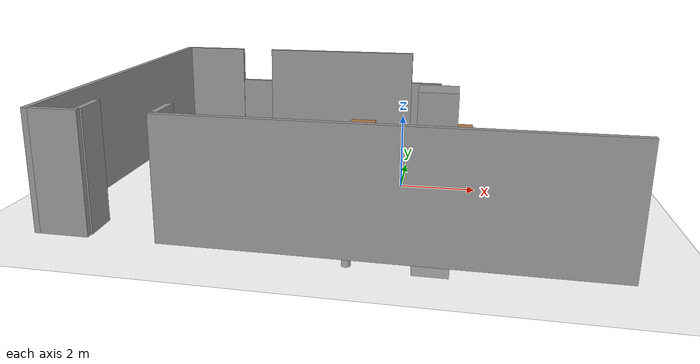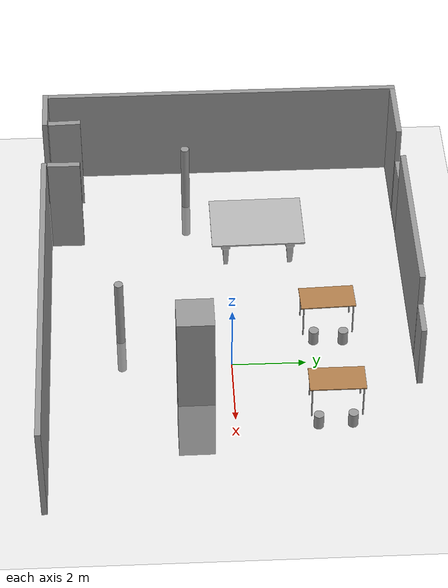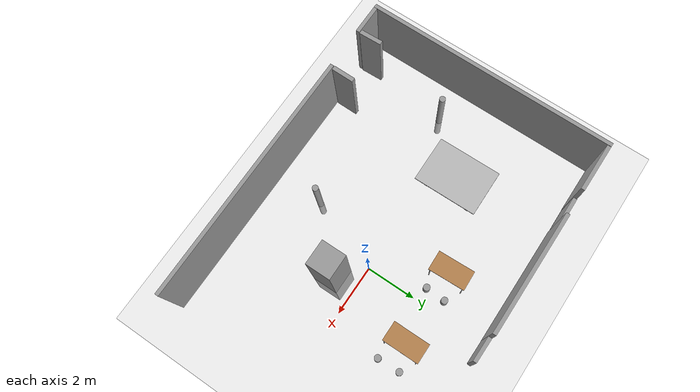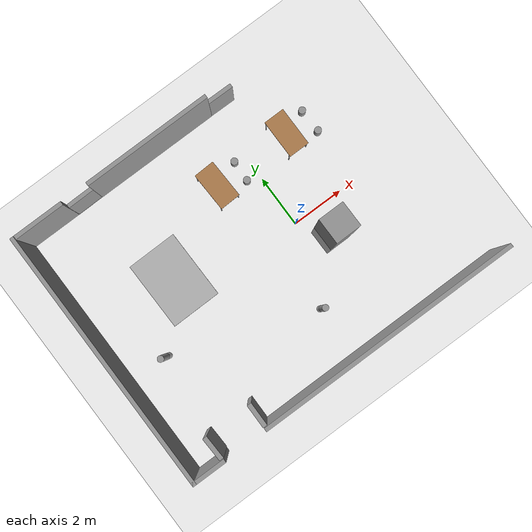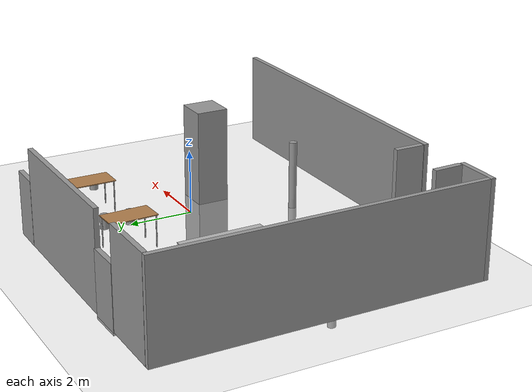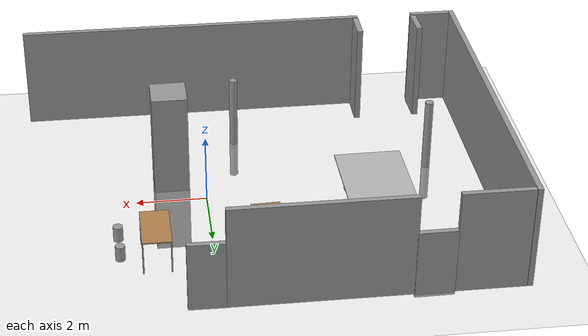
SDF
<sdf version="1.6">
 <world name="default">
  <model name="ground_plane">
   <static>1</static>
   <link name="link">
    <collision name="collision">
     <geometry><plane><normal>0 0 1</normal><size>100 100</size></plane></geometry>
     <surface><friction><ode><mu>100</mu><mu2>50</mu2></ode></friction></surface>
    </collision>
    <visual name="visual">
     <cast_shadows>0</cast_shadows>
     <geometry><plane><normal>0 0 1</normal><size>100 100</size></plane></geometry>
     <material>
      <script><uri>file://media/materials/scripts/gazebo.material</uri><name>Gazebo/Grey</name></script>
     </material>
    </visual>
   </link>
  </model>
  <model name="5">
   <link name="Door_0">
    <pose>-6.8 -4.45535 0 0 -0 1.60426</pose>
    <visual name="Door_0_Visual">
     <pose>0 0 1.5 0 -0 0</pose>
     <geometry><box><size>0.9 0.17 3</size></box></geometry>
     <material>
      <script><uri>file://media/materials/scripts/gazebo.material</uri><name>Gazebo/Grey</name></script>
     </material>
    </visual>
    <collision name="Door_0_Collision">
     <pose>0 0 1.5 0 -0 0</pose>
     <geometry><box><size>0.9 0.17 3</size></box></geometry>
     <surface>
      <friction>
       <ode><mu>1</mu><mu2>1</mu2><fdir1>0 0 0</fdir1><slip1>0</slip1><slip2>0</slip2></ode>
       <torsional>
        <coefficient>1</coefficient>
        <patch_radius>0</patch_radius>
        <surface_radius>0</surface_radius>
        <use_patch_radius>1</use_patch_radius>
        <ode><slip>0</slip></ode>
       </torsional>
      </friction>
      <bounce><restitution_coefficient>0</restitution_coefficient><threshold>1e+06</threshold></bounce>
      <contact>
       <collide_without_contact>0</collide_without_contact>
       <collide_without_contact_bitmask>1</collide_without_contact_bitmask>
       <collide_bitmask>1</collide_bitmask>
       <ode>
        <soft_cfm>0</soft_cfm>
        <soft_erp>0.2</soft_erp>
        <kp>1e+13</kp>
        <kd>1</kd>
        <max_vel>0.01</max_vel>
        <min_depth>0</min_depth>
       </ode>
       <bullet>
        <split_impulse>1</split_impulse>
        <split_impulse_penetration_threshold>-0.01</split_impulse_penetration_threshold>
        <soft_cfm>0</soft_cfm>
        <soft_erp>0.2</soft_erp>
        <kp>1e+13</kp>
        <kd>1</kd>
       </bullet>
      </contact>
     </surface>
    </collision>
   </link>
   <link name="Door_1">
    <pose>-5 -4.45535 0 0 0 -1.57995</pose>
    <visual name="Door_1_Visual">
     <pose>0 0 1.5 0 -0 0</pose>
     <geometry><box><size>0.9 0.17 3</size></box></geometry>
     <material>
      <script><uri>file://media/materials/scripts/gazebo.material</uri><name>Gazebo/Grey</name></script>
     </material>
    </visual>
    <collision name="Door_1_Collision">
     <pose>0 0 1.5 0 -0 0</pose>
     <geometry><box><size>0.9 0.17 3</size></box></geometry>
     <surface>
      <friction>
       <ode><mu>1</mu><mu2>1</mu2><fdir1>0 0 0</fdir1><slip1>0</slip1><slip2>0</slip2></ode>
       <torsional>
        <coefficient>1</coefficient>
        <patch_radius>0</patch_radius>
        <surface_radius>0</surface_radius>
        <use_patch_radius>1</use_patch_radius>
        <ode><slip>0</slip></ode>
       </torsional>
      </friction>
      <bounce><restitution_coefficient>0</restitution_coefficient><threshold>1e+06</threshold></bounce>
      <contact>
       <collide_without_contact>0</collide_without_contact>
       <collide_without_contact_bitmask>1</collide_without_contact_bitmask>
       <collide_bitmask>1</collide_bitmask>
       <ode>
        <soft_cfm>0</soft_cfm>
        <soft_erp>0.2</soft_erp>
        <kp>1e+13</kp>
        <kd>1</kd>
        <max_vel>0.01</max_vel>
        <min_depth>0</min_depth>
       </ode>
       <bullet>
        <split_impulse>1</split_impulse>
        <split_impulse_penetration_threshold>-0.01</split_impulse_penetration_threshold>
        <soft_cfm>0</soft_cfm>
        <soft_erp>0.2</soft_erp>
        <kp>1e+13</kp>
        <kd>1</kd>
       </bullet>
      </contact>
     </surface>
    </collision>
   </link>
   <link name="Wall_14">
    <pose>-6.95 4.99465 0 0 -0 0</pose>
    <inertial>
     <inertia><ixx>0</ixx><ixy>0</ixy><ixz>0</ixz><iyy>0</iyy><iyz>0</iyz><izz>0</izz></inertia>
     <mass>0</mass>
    </inertial>
    <visual name="Wall_14_Visual">
     <pose>0 0 1.5 0 -0 0</pose>
     <geometry><box><size>1.92851 0.15 3</size></box></geometry>
     <material>
      <script><uri>file://media/materials/scripts/gazebo.material</uri><name>Gazebo/Grey</name></script>
      <ambient>1 1 1 1</ambient>
     </material>
     <meta><layer>0</layer></meta>
    </visual>
    <collision name="Wall_14_Collision">
     <pose>0 0 1.5 0 -0 0</pose>
     <geometry><box><size>1.92851 0.15 3</size></box></geometry>
     <surface>
      <friction>
       <ode><mu>1</mu><mu2>1</mu2><fdir1>0 0 0</fdir1><slip1>0</slip1><slip2>0</slip2></ode>
       <torsional>
        <coefficient>1</coefficient>
        <patch_radius>0</patch_radius>
        <surface_radius>0</surface_radius>
        <use_patch_radius>1</use_patch_radius>
        <ode><slip>0</slip></ode>
       </torsional>
      </friction>
      <bounce><restitution_coefficient>0</restitution_coefficient><threshold>1e+06</threshold></bounce>
      <contact>
       <collide_without_contact>0</collide_without_contact>
       <collide_without_contact_bitmask>1</collide_without_contact_bitmask>
       <collide_bitmask>1</collide_bitmask>
       <ode>
        <soft_cfm>0</soft_cfm>
        <soft_erp>0.2</soft_erp>
        <kp>1e+13</kp>
        <kd>1</kd>
        <max_vel>0.01</max_vel>
        <min_depth>0</min_depth>
       </ode>
       <bullet>
        <split_impulse>1</split_impulse>
        <split_impulse_penetration_threshold>-0.01</split_impulse_penetration_threshold>
        <soft_cfm>0</soft_cfm>
        <soft_erp>0.2</soft_erp>
        <kp>1e+13</kp>
        <kd>1</kd>
       </bullet>
      </contact>
     </surface>
    </collision>
   </link>
   <link name="Wall_16">
    <pose>-5.46038 5.01485 -0.090835 0 -0 0.010986</pose>
    <inertial>
     <inertia><ixx>0</ixx><ixy>0</ixy><ixz>0</ixz><iyy>0</iyy><iyz>0</iyz><izz>0</izz></inertia>
     <mass>0</mass>
    </inertial>
    <visual name="Wall_16_Visual_0">
     <pose>0 0 1 0 -0 0</pose>
     <geometry><box><size>1.06569 0.15 2</size></box></geometry>
     <material>
      <script><uri>file://media/materials/scripts/gazebo.material</uri><name>Gazebo/Grey</name></script>
      <ambient>1 1 1 1</ambient>
     </material>
     <meta><layer>0</layer></meta>
    </visual>
    <collision name="Wall_16_Collision_0">
     <pose>0 0 1 0 -0 0</pose>
     <geometry><box><size>1.06569 0.15 2</size></box></geometry>
     <surface>
      <friction>
       <ode><mu>1</mu><mu2>1</mu2><fdir1>0 0 0</fdir1><slip1>0</slip1><slip2>0</slip2></ode>
       <torsional>
        <coefficient>1</coefficient>
        <patch_radius>0</patch_radius>
        <surface_radius>0</surface_radius>
        <use_patch_radius>1</use_patch_radius>
        <ode><slip>0</slip></ode>
       </torsional>
      </friction>
      <bounce><restitution_coefficient>0</restitution_coefficient><threshold>1e+06</threshold></bounce>
      <contact>
       <collide_without_contact>0</collide_without_contact>
       <collide_without_contact_bitmask>1</collide_without_contact_bitmask>
       <collide_bitmask>1</collide_bitmask>
       <ode>
        <soft_cfm>0</soft_cfm>
        <soft_erp>0.2</soft_erp>
        <kp>1e+13</kp>
        <kd>1</kd>
        <max_vel>0.01</max_vel>
        <min_depth>0</min_depth>
       </ode>
       <bullet>
        <split_impulse>1</split_impulse>
        <split_impulse_penetration_threshold>-0.01</split_impulse_penetration_threshold>
        <soft_cfm>0</soft_cfm>
        <soft_erp>0.2</soft_erp>
        <kp>1e+13</kp>
        <kd>1</kd>
       </bullet>
      </contact>
     </surface>
    </collision>
   </link>
   <link name="Wall_18">
    <pose>-2.49995 5.00014 0 0 -0 0</pose>
    <inertial>
     <inertia><ixx>0</ixx><ixy>0</ixy><ixz>0</ixz><iyy>0</iyy><iyz>0</iyz><izz>0</izz></inertia>
     <mass>0</mass>
    </inertial>
    <visual name="Wall_18_Visual">
     <pose>0 0 1.5 0 -0 0</pose>
     <geometry><box><size>4.90994 0.15 3</size></box></geometry>
     <material>
      <script><uri>file://media/materials/scripts/gazebo.material</uri><name>Gazebo/Grey</name></script>
      <ambient>1 1 1 1</ambient>
     </material>
     <meta><layer>0</layer></meta>
    </visual>
    <collision name="Wall_18_Collision">
     <pose>0 0 1.5 0 -0 0</pose>
     <geometry><box><size>4.90994 0.15 3</size></box></geometry>
     <surface>
      <friction>
       <ode><mu>1</mu><mu2>1</mu2><fdir1>0 0 0</fdir1><slip1>0</slip1><slip2>0</slip2></ode>
       <torsional>
        <coefficient>1</coefficient>
        <patch_radius>0</patch_radius>
        <surface_radius>0</surface_radius>
        <use_patch_radius>1</use_patch_radius>
        <ode><slip>0</slip></ode>
       </torsional>
      </friction>
      <bounce><restitution_coefficient>0</restitution_coefficient><threshold>1e+06</threshold></bounce>
      <contact>
       <collide_without_contact>0</collide_without_contact>
       <collide_without_contact_bitmask>1</collide_without_contact_bitmask>
       <collide_bitmask>1</collide_bitmask>
       <ode>
        <soft_cfm>0</soft_cfm>
        <soft_erp>0.2</soft_erp>
        <kp>1e+13</kp>
        <kd>1</kd>
        <max_vel>0.01</max_vel>
        <min_depth>0</min_depth>
       </ode>
       <bullet>
        <split_impulse>1</split_impulse>
        <split_impulse_penetration_threshold>-0.01</split_impulse_penetration_threshold>
        <soft_cfm>0</soft_cfm>
        <soft_erp>0.2</soft_erp>
        <kp>1e+13</kp>
        <kd>1</kd>
       </bullet>
      </contact>
     </surface>
    </collision>
   </link>
   <link name="Wall_2">
    <pose>-7.4 -5.00535 0 0 -0 0</pose>
    <visual name="Wall_2_Visual">
     <pose>0 0 1.5 0 -0 0</pose>
     <geometry><box><size>1.35 0.15 3</size></box></geometry>
     <material>
      <script><uri>file://media/materials/scripts/gazebo.material</uri><name>Gazebo/Grey</name></script>
      <ambient>1 1 1 1</ambient>
     </material>
     <meta><layer>0</layer></meta>
    </visual>
    <collision name="Wall_2_Collision">
     <pose>0 0 1.5 0 -0 0</pose>
     <geometry><box><size>1.35 0.15 3</size></box></geometry>
     <surface>
      <friction>
       <ode><mu>1</mu><mu2>1</mu2><fdir1>0 0 0</fdir1><slip1>0</slip1><slip2>0</slip2></ode>
       <torsional>
        <coefficient>1</coefficient>
        <patch_radius>0</patch_radius>
        <surface_radius>0</surface_radius>
        <use_patch_radius>1</use_patch_radius>
        <ode><slip>0</slip></ode>
       </torsional>
      </friction>
      <bounce><restitution_coefficient>0</restitution_coefficient><threshold>1e+06</threshold></bounce>
      <contact>
       <collide_without_contact>0</collide_without_contact>
       <collide_without_contact_bitmask>1</collide_without_contact_bitmask>
       <collide_bitmask>1</collide_bitmask>
       <ode>
        <soft_cfm>0</soft_cfm>
        <soft_erp>0.2</soft_erp>
        <kp>1e+13</kp>
        <kd>1</kd>
        <max_vel>0.01</max_vel>
        <min_depth>0</min_depth>
       </ode>
       <bullet>
        <split_impulse>1</split_impulse>
        <split_impulse_penetration_threshold>-0.01</split_impulse_penetration_threshold>
        <soft_cfm>0</soft_cfm>
        <soft_erp>0.2</soft_erp>
        <kp>1e+13</kp>
        <kd>1</kd>
       </bullet>
      </contact>
     </surface>
    </collision>
   </link>
   <link name="Wall_20">
    <pose>0.45 4.99959 0 0 0 -0.010986</pose>
    <inertial>
     <inertia><ixx>0</ixx><ixy>0</ixy><ixz>0</ixz><iyy>0</iyy><iyz>0</iyz><izz>0</izz></inertia>
     <mass>0</mass>
    </inertial>
    <visual name="Wall_20_Visual_0">
     <pose>0 0 1 0 -0 0</pose>
     <geometry><box><size>1.00165 0.15 2</size></box></geometry>
     <material>
      <script><uri>file://media/materials/scripts/gazebo.material</uri><name>Gazebo/Grey</name></script>
      <ambient>1 1 1 1</ambient>
     </material>
     <meta><layer>0</layer></meta>
    </visual>
    <collision name="Wall_20_Collision_0">
     <pose>0 0 1 0 -0 0</pose>
     <geometry><box><size>1.00165 0.15 2</size></box></geometry>
     <surface>
      <friction>
       <ode><mu>1</mu><mu2>1</mu2><fdir1>0 0 0</fdir1><slip1>0</slip1><slip2>0</slip2></ode>
       <torsional>
        <coefficient>1</coefficient>
        <patch_radius>0</patch_radius>
        <surface_radius>0</surface_radius>
        <use_patch_radius>1</use_patch_radius>
        <ode><slip>0</slip></ode>
       </torsional>
      </friction>
      <bounce><restitution_coefficient>0</restitution_coefficient><threshold>1e+06</threshold></bounce>
      <contact>
       <collide_without_contact>0</collide_without_contact>
       <collide_without_contact_bitmask>1</collide_without_contact_bitmask>
       <collide_bitmask>1</collide_bitmask>
       <ode>
        <soft_cfm>0</soft_cfm>
        <soft_erp>0.2</soft_erp>
        <kp>1e+13</kp>
        <kd>1</kd>
        <max_vel>0.01</max_vel>
        <min_depth>0</min_depth>
       </ode>
       <bullet>
        <split_impulse>1</split_impulse>
        <split_impulse_penetration_threshold>-0.01</split_impulse_penetration_threshold>
        <soft_cfm>0</soft_cfm>
        <soft_erp>0.2</soft_erp>
        <kp>1e+13</kp>
        <kd>1</kd>
       </bullet>
      </contact>
     </surface>
    </collision>
   </link>
   <link name="Wall_4">
    <pose>-8 -0.005353 0 0 -0 1.5708</pose>
    <inertial>
     <mass>1</mass>
     <inertia><ixx>1</ixx><ixy>0</ixy><ixz>0</ixz><iyy>1</iyy><iyz>0</iyz><izz>1</izz></inertia>
    </inertial>
    <visual name="Wall_4_Visual">
     <pose>0 0 1.5 0 -0 0</pose>
     <geometry><box><size>10.15 0.15 3</size></box></geometry>
     <material>
      <script><uri>file://media/materials/scripts/gazebo.material</uri><name>Gazebo/Grey</name></script>
      <ambient>1 1 1 1</ambient>
      <shader type="vertex"><normal_map>__default__</normal_map></shader>
     </material>
     <meta><layer>0</layer></meta>
    </visual>
    <collision name="Wall_4_Collision">
     <pose>0 0 1.5 0 -0 0</pose>
     <geometry><box><size>10.15 0.15 3</size></box></geometry>
     <surface>
      <friction>
       <ode><mu>1</mu><mu2>1</mu2><fdir1>0 0 0</fdir1><slip1>0</slip1><slip2>0</slip2></ode>
       <torsional>
        <coefficient>1</coefficient>
        <patch_radius>0</patch_radius>
        <surface_radius>0</surface_radius>
        <use_patch_radius>1</use_patch_radius>
        <ode><slip>0</slip></ode>
       </torsional>
      </friction>
      <bounce><restitution_coefficient>0</restitution_coefficient><threshold>1e+06</threshold></bounce>
      <contact>
       <collide_without_contact>0</collide_without_contact>
       <collide_without_contact_bitmask>1</collide_without_contact_bitmask>
       <collide_bitmask>1</collide_bitmask>
       <ode>
        <soft_cfm>0</soft_cfm>
        <soft_erp>0.2</soft_erp>
        <kp>1e+13</kp>
        <kd>1</kd>
        <max_vel>0.01</max_vel>
        <min_depth>0</min_depth>
       </ode>
       <bullet>
        <split_impulse>1</split_impulse>
        <split_impulse_penetration_threshold>-0.01</split_impulse_penetration_threshold>
        <soft_cfm>0</soft_cfm>
        <soft_erp>0.2</soft_erp>
        <kp>1e+13</kp>
        <kd>1</kd>
       </bullet>
      </contact>
     </surface>
    </collision>
   </link>
   <link name="Wall_8">
    <pose>0 -5.00535 0 0 -0 0</pose>
    <visual name="Wall_8_Visual">
     <pose>0 0 1.5 0 -0 0</pose>
     <geometry><box><size>10.15 0.15 3</size></box></geometry>
     <material>
      <script><uri>file://media/materials/scripts/gazebo.material</uri><name>Gazebo/Grey</name></script>
      <ambient>1 1 1 1</ambient>
     </material>
     <meta><layer>0</layer></meta>
    </visual>
    <collision name="Wall_8_Collision">
     <pose>0 0 1.5 0 -0 0</pose>
     <geometry><box><size>10.15 0.15 3</size></box></geometry>
     <surface>
      <friction>
       <ode><mu>1</mu><mu2>1</mu2><fdir1>0 0 0</fdir1><slip1>0</slip1><slip2>0</slip2></ode>
       <torsional>
        <coefficient>1</coefficient>
        <patch_radius>0</patch_radius>
        <surface_radius>0</surface_radius>
        <use_patch_radius>1</use_patch_radius>
        <ode><slip>0</slip></ode>
       </torsional>
      </friction>
      <bounce><restitution_coefficient>0</restitution_coefficient><threshold>1e+06</threshold></bounce>
      <contact>
       <collide_without_contact>0</collide_without_contact>
       <collide_without_contact_bitmask>1</collide_without_contact_bitmask>
       <collide_bitmask>1</collide_bitmask>
       <ode>
        <soft_cfm>0</soft_cfm>
        <soft_erp>0.2</soft_erp>
        <kp>1e+13</kp>
        <kd>1</kd>
        <max_vel>0.01</max_vel>
        <min_depth>0</min_depth>
       </ode>
       <bullet>
        <split_impulse>1</split_impulse>
        <split_impulse_penetration_threshold>-0.01</split_impulse_penetration_threshold>
        <soft_cfm>0</soft_cfm>
        <soft_erp>0.2</soft_erp>
        <kp>1e+13</kp>
        <kd>1</kd>
       </bullet>
      </contact>
     </surface>
    </collision>
   </link>
   <link name="link_10_clone_0">
    <inertial>
     <mass>0.189527</mass>
     <inertia>
      <ixx>0.168646</ixx>
      <ixy>0</ixy>
      <ixz>0</ixz>
      <iyy>0.168646</iyy>
      <iyz>0</iyz>
      <izz>0.00137469</izz>
     </inertia>
    </inertial>
    <pose>-1.03893 -3.00419 0.5 0 0 -3.13181</pose>
    <visual name="visual">
     <geometry><cylinder><radius>0.120443</radius><length>3.26104</length></cylinder></geometry>
     <material>
      <lighting>1</lighting>
      <script><uri>file://media/materials/scripts/gazebo.material</uri><name>Gazebo/Grey</name></script>
      <shader type="pixel"/>
     </material>
    </visual>
    <collision name="collision">
     <geometry><cylinder><radius>0.120443</radius><length>3.26104</length></cylinder></geometry>
     <surface>
      <friction>
       <ode><mu>1</mu><mu2>1</mu2><fdir1>0 0 0</fdir1><slip1>0</slip1><slip2>0</slip2></ode>
       <torsional>
        <coefficient>1</coefficient>
        <patch_radius>0</patch_radius>
        <surface_radius>0</surface_radius>
        <use_patch_radius>1</use_patch_radius>
        <ode><slip>0</slip></ode>
       </torsional>
      </friction>
      <bounce><restitution_coefficient>0</restitution_coefficient><threshold>1e+06</threshold></bounce>
      <contact>
       <collide_without_contact>0</collide_without_contact>
       <collide_without_contact_bitmask>1</collide_without_contact_bitmask>
       <collide_bitmask>1</collide_bitmask>
       <ode>
        <soft_cfm>0</soft_cfm>
        <soft_erp>0.2</soft_erp>
        <kp>1e+13</kp>
        <kd>1</kd>
        <max_vel>0.01</max_vel>
        <min_depth>0</min_depth>
       </ode>
       <bullet>
        <split_impulse>1</split_impulse>
        <split_impulse_penetration_threshold>-0.01</split_impulse_penetration_threshold>
        <soft_cfm>0</soft_cfm>
        <soft_erp>0.2</soft_erp>
        <kp>1e+13</kp>
        <kd>1</kd>
       </bullet>
      </contact>
     </surface>
    </collision>
   </link>
   <link name="link_10_clone_1">
    <inertial>
     <mass>0.189527</mass>
     <inertia>
      <ixx>0.168646</ixx>
      <ixy>0</ixy>
      <ixz>0</ixz>
      <iyy>0.168646</iyy>
      <iyz>0</iyz>
      <izz>0.00137469</izz>
     </inertia>
    </inertial>
    <pose>-6.52605 -1.05414 0.5 0 0 -3.13181</pose>
    <visual name="visual">
     <geometry><cylinder><radius>0.120443</radius><length>3.26104</length></cylinder></geometry>
     <material>
      <lighting>1</lighting>
      <script><uri>file://media/materials/scripts/gazebo.material</uri><name>Gazebo/Grey</name></script>
      <shader type="pixel"/>
     </material>
    </visual>
    <collision name="collision">
     <geometry><cylinder><radius>0.120443</radius><length>3.26104</length></cylinder></geometry>
     <surface>
      <friction>
       <ode><mu>1</mu><mu2>1</mu2><fdir1>0 0 0</fdir1><slip1>0</slip1><slip2>0</slip2></ode>
       <torsional>
        <coefficient>1</coefficient>
        <patch_radius>0</patch_radius>
        <surface_radius>0</surface_radius>
        <use_patch_radius>1</use_patch_radius>
        <ode><slip>0</slip></ode>
       </torsional>
      </friction>
      <bounce><restitution_coefficient>0</restitution_coefficient><threshold>1e+06</threshold></bounce>
      <contact>
       <collide_without_contact>0</collide_without_contact>
       <collide_without_contact_bitmask>1</collide_without_contact_bitmask>
       <collide_bitmask>1</collide_bitmask>
       <ode>
        <soft_cfm>0</soft_cfm>
        <soft_erp>0.2</soft_erp>
        <kp>1e+13</kp>
        <kd>1</kd>
        <max_vel>0.01</max_vel>
        <min_depth>0</min_depth>
       </ode>
       <bullet>
        <split_impulse>1</split_impulse>
        <split_impulse_penetration_threshold>-0.01</split_impulse_penetration_threshold>
        <soft_cfm>0</soft_cfm>
        <soft_erp>0.2</soft_erp>
        <kp>1e+13</kp>
        <kd>1</kd>
       </bullet>
      </contact>
     </surface>
    </collision>
   </link>
   <link name="link_13">
    <inertial>
     <mass>0.0313183</mass>
     <inertia>
      <ixx>0.000638939</ixx>
      <ixy>0</ixy>
      <ixz>0</ixz>
      <iyy>0.000638939</iyy>
      <iyz>0</iyz>
      <izz>0.0002788</izz>
     </inertia>
    </inertial>
    <pose>-0.431774 3.02424 0.5 0 -0 1.57569</pose>
    <visual name="visual">
     <geometry><cylinder><radius>0.133433</radius><length>0.437499</length></cylinder></geometry>
     <material>
      <lighting>1</lighting>
      <script><uri>file://media/materials/scripts/gazebo.material</uri><name>Gazebo/Grey</name></script>
     </material>
    </visual>
    <collision name="collision">
     <geometry><cylinder><radius>0.133433</radius><length>0.437499</length></cylinder></geometry>
     <surface>
      <friction>
       <ode><mu>1</mu><mu2>1</mu2><fdir1>0 0 0</fdir1><slip1>0</slip1><slip2>0</slip2></ode>
       <torsional>
        <coefficient>1</coefficient>
        <patch_radius>0</patch_radius>
        <surface_radius>0</surface_radius>
        <use_patch_radius>1</use_patch_radius>
        <ode><slip>0</slip></ode>
       </torsional>
      </friction>
      <bounce><restitution_coefficient>0</restitution_coefficient><threshold>1e+06</threshold></bounce>
      <contact>
       <collide_without_contact>0</collide_without_contact>
       <collide_without_contact_bitmask>1</collide_without_contact_bitmask>
       <collide_bitmask>1</collide_bitmask>
       <ode>
        <soft_cfm>0</soft_cfm>
        <soft_erp>0.2</soft_erp>
        <kp>1e+13</kp>
        <kd>1</kd>
        <max_vel>0.01</max_vel>
        <min_depth>0</min_depth>
       </ode>
       <bullet>
        <split_impulse>1</split_impulse>
        <split_impulse_penetration_threshold>-0.01</split_impulse_penetration_threshold>
        <soft_cfm>0</soft_cfm>
        <soft_erp>0.2</soft_erp>
        <kp>1e+13</kp>
        <kd>1</kd>
       </bullet>
      </contact>
     </surface>
    </collision>
   </link>
   <link name="link_13_clone">
    <inertial>
     <mass>0.0313183</mass>
     <inertia>
      <ixx>0.000638939</ixx>
      <ixy>0</ixy>
      <ixz>0</ixz>
      <iyy>0.000638939</iyy>
      <iyz>0</iyz>
      <izz>0.0002788</izz>
     </inertia>
    </inertial>
    <pose>-0.473274 2.22757 0.5 0 0 -3.13181</pose>
    <visual name="visual">
     <geometry><cylinder><radius>0.133433</radius><length>0.437499</length></cylinder></geometry>
     <material>
      <lighting>1</lighting>
      <script><uri>file://media/materials/scripts/gazebo.material</uri><name>Gazebo/Grey</name></script>
      <shader type="pixel"/>
     </material>
    </visual>
    <collision name="collision">
     <geometry><cylinder><radius>0.133433</radius><length>0.437499</length></cylinder></geometry>
     <surface>
      <friction>
       <ode><mu>1</mu><mu2>1</mu2><fdir1>0 0 0</fdir1><slip1>0</slip1><slip2>0</slip2></ode>
       <torsional>
        <coefficient>1</coefficient>
        <patch_radius>0</patch_radius>
        <surface_radius>0</surface_radius>
        <use_patch_radius>1</use_patch_radius>
        <ode><slip>0</slip></ode>
       </torsional>
      </friction>
      <bounce><restitution_coefficient>0</restitution_coefficient><threshold>1e+06</threshold></bounce>
      <contact>
       <collide_without_contact>0</collide_without_contact>
       <collide_without_contact_bitmask>1</collide_without_contact_bitmask>
       <collide_bitmask>1</collide_bitmask>
       <ode>
        <soft_cfm>0</soft_cfm>
        <soft_erp>0.2</soft_erp>
        <kp>1e+13</kp>
        <kd>1</kd>
        <max_vel>0.01</max_vel>
        <min_depth>0</min_depth>
       </ode>
       <bullet>
        <split_impulse>1</split_impulse>
        <split_impulse_penetration_threshold>-0.01</split_impulse_penetration_threshold>
        <soft_cfm>0</soft_cfm>
        <soft_erp>0.2</soft_erp>
        <kp>1e+13</kp>
        <kd>1</kd>
       </bullet>
      </contact>
     </surface>
    </collision>
   </link>
   <link name="link_13_clone_0">
    <inertial>
     <mass>0.0313183</mass>
     <inertia>
      <ixx>0.000638939</ixx>
      <ixy>0</ixy>
      <ixz>0</ixz>
      <iyy>0.000638939</iyy>
      <iyz>0</iyz>
      <izz>0.0002788</izz>
     </inertia>
    </inertial>
    <pose>2.58171 3.04263 0.5 0 0 -3.13181</pose>
    <visual name="visual">
     <geometry><cylinder><radius>0.133433</radius><length>0.437499</length></cylinder></geometry>
     <material>
      <lighting>1</lighting>
      <script><uri>file://media/materials/scripts/gazebo.material</uri><name>Gazebo/Grey</name></script>
      <shader type="pixel"/>
     </material>
    </visual>
    <collision name="collision">
     <geometry><cylinder><radius>0.133433</radius><length>0.437499</length></cylinder></geometry>
     <surface>
      <friction>
       <ode><mu>1</mu><mu2>1</mu2><fdir1>0 0 0</fdir1><slip1>0</slip1><slip2>0</slip2></ode>
       <torsional>
        <coefficient>1</coefficient>
        <patch_radius>0</patch_radius>
        <surface_radius>0</surface_radius>
        <use_patch_radius>1</use_patch_radius>
        <ode><slip>0</slip></ode>
       </torsional>
      </friction>
      <bounce><restitution_coefficient>0</restitution_coefficient><threshold>1e+06</threshold></bounce>
      <contact>
       <collide_without_contact>0</collide_without_contact>
       <collide_without_contact_bitmask>1</collide_without_contact_bitmask>
       <collide_bitmask>1</collide_bitmask>
       <ode>
        <soft_cfm>0</soft_cfm>
        <soft_erp>0.2</soft_erp>
        <kp>1e+13</kp>
        <kd>1</kd>
        <max_vel>0.01</max_vel>
        <min_depth>0</min_depth>
       </ode>
       <bullet>
        <split_impulse>1</split_impulse>
        <split_impulse_penetration_threshold>-0.01</split_impulse_penetration_threshold>
        <soft_cfm>0</soft_cfm>
        <soft_erp>0.2</soft_erp>
        <kp>1e+13</kp>
        <kd>1</kd>
       </bullet>
      </contact>
     </surface>
    </collision>
   </link>
   <link name="link_13_clone_1">
    <inertial>
     <mass>0.0313183</mass>
     <inertia>
      <ixx>0.00063894</ixx>
      <ixy>0</ixy>
      <ixz>0</ixz>
      <iyy>0.00063894</iyy>
      <iyz>0</iyz>
      <izz>0.0002788</izz>
     </inertia>
    </inertial>
    <pose>2.6065 2.13919 0.5 0 0 -3.13181</pose>
    <visual name="visual">
     <geometry><cylinder><radius>0.133433</radius><length>0.437499</length></cylinder></geometry>
     <material>
      <lighting>1</lighting>
      <script><uri>file://media/materials/scripts/gazebo.material</uri><name>Gazebo/Grey</name></script>
      <shader type="vertex"><normal_map>__default__</normal_map></shader>
      <ambient>0.3 0.3 0.3 1</ambient>
      <diffuse>0.7 0.7 0.7 1</diffuse>
      <specular>0.01 0.01 0.01 1</specular>
      <emissive>0 0 0 1</emissive>
     </material>
    </visual>
    <collision name="collision">
     <geometry><cylinder><radius>0.133433</radius><length>0.437499</length></cylinder></geometry>
     <surface>
      <friction>
       <ode><mu>1</mu><mu2>1</mu2><fdir1>0 0 0</fdir1><slip1>0</slip1><slip2>0</slip2></ode>
       <torsional>
        <coefficient>1</coefficient>
        <patch_radius>0</patch_radius>
        <surface_radius>0</surface_radius>
        <use_patch_radius>1</use_patch_radius>
        <ode><slip>0</slip></ode>
       </torsional>
      </friction>
      <bounce><restitution_coefficient>0</restitution_coefficient><threshold>1e+06</threshold></bounce>
      <contact>
       <collide_without_contact>0</collide_without_contact>
       <collide_without_contact_bitmask>1</collide_without_contact_bitmask>
       <collide_bitmask>1</collide_bitmask>
       <ode>
        <soft_cfm>0</soft_cfm>
        <soft_erp>0.2</soft_erp>
        <kp>1e+13</kp>
        <kd>1</kd>
        <max_vel>0.01</max_vel>
        <min_depth>0</min_depth>
       </ode>
       <bullet>
        <split_impulse>1</split_impulse>
        <split_impulse_penetration_threshold>-0.01</split_impulse_penetration_threshold>
        <soft_cfm>0</soft_cfm>
        <soft_erp>0.2</soft_erp>
        <kp>1e+13</kp>
        <kd>1</kd>
       </bullet>
      </contact>
     </surface>
    </collision>
   </link>
   <link name="link_7">
    <inertial>
     <mass>4.9684</mass>
     <inertia><ixx>10.6346</ixx><ixy>0</ixy><ixz>0</ixz><iyy>10.6346</iyy><iyz>0</iyz><izz>0.828067</izz></inertia>
    </inertial>
    <pose>0.980818 -1.0177 0.5 0 -0 1.57569</pose>
    <visual name="visual">
     <geometry><box><size>1 1 4.96842</size></box></geometry>
     <material>
      <lighting>1</lighting>
      <script><uri>file://media/materials/scripts/gazebo.material</uri><name>Gazebo/Grey</name></script>
     </material>
    </visual>
    <collision name="collision">
     <geometry><box><size>1 1 4.96842</size></box></geometry>
     <surface>
      <friction>
       <ode><mu>1</mu><mu2>1</mu2><fdir1>0 0 0</fdir1><slip1>0</slip1><slip2>0</slip2></ode>
       <torsional>
        <coefficient>1</coefficient>
        <patch_radius>0</patch_radius>
        <surface_radius>0</surface_radius>
        <use_patch_radius>1</use_patch_radius>
        <ode><slip>0</slip></ode>
       </torsional>
      </friction>
      <bounce><restitution_coefficient>0</restitution_coefficient><threshold>1e+06</threshold></bounce>
      <contact>
       <collide_without_contact>0</collide_without_contact>
       <collide_without_contact_bitmask>1</collide_without_contact_bitmask>
       <collide_bitmask>1</collide_bitmask>
       <ode>
        <soft_cfm>0</soft_cfm>
        <soft_erp>0.2</soft_erp>
        <kp>1e+13</kp>
        <kd>1</kd>
        <max_vel>0.01</max_vel>
        <min_depth>0</min_depth>
       </ode>
       <bullet>
        <split_impulse>1</split_impulse>
        <split_impulse_penetration_threshold>-0.01</split_impulse_penetration_threshold>
        <soft_cfm>0</soft_cfm>
        <soft_erp>0.2</soft_erp>
        <kp>1e+13</kp>
        <kd>1</kd>
       </bullet>
      </contact>
     </surface>
    </collision>
   </link>
   <model name="table">
    <static>1</static>
    <link name="link">
     <collision name="surface">
      <pose>0 0 1 0 -0 0</pose>
      <geometry><box><size>1.5 0.8 0.03</size></box></geometry>
      <surface><friction><ode><mu>0.6</mu><mu2>0.6</mu2></ode></friction></surface>
     </collision>
     <visual name="visual1">
      <pose>0 0 1 0 -0 0</pose>
      <geometry><box><size>1.5 0.8 0.03</size></box></geometry>
      <material>
       <script><uri>file://media/materials/scripts/gazebo.material</uri><name>Gazebo/Wood</name></script>
      </material>
     </visual>
     <collision name="front_left_leg">
      <pose>0.68 0.38 0.5 0 -0 0</pose>
      <geometry><cylinder><radius>0.02</radius><length>1</length></cylinder></geometry>
     </collision>
     <visual name="front_left_leg">
      <pose>0.68 0.38 0.5 0 -0 0</pose>
      <geometry><cylinder><radius>0.02</radius><length>1</length></cylinder></geometry>
      <material>
       <script><uri>file://media/materials/scripts/gazebo.material</uri><name>Gazebo/Grey</name></script>
      </material>
     </visual>
     <collision name="front_right_leg">
      <pose>0.68 -0.38 0.5 0 -0 0</pose>
      <geometry><cylinder><radius>0.02</radius><length>1</length></cylinder></geometry>
     </collision>
     <visual name="front_right_leg">
      <pose>0.68 -0.38 0.5 0 -0 0</pose>
      <geometry><cylinder><radius>0.02</radius><length>1</length></cylinder></geometry>
      <material>
       <script><uri>file://media/materials/scripts/gazebo.material</uri><name>Gazebo/Grey</name></script>
      </material>
     </visual>
     <collision name="back_right_leg">
      <pose>-0.68 -0.38 0.5 0 -0 0</pose>
      <geometry><cylinder><radius>0.02</radius><length>1</length></cylinder></geometry>
     </collision>
     <visual name="back_right_leg">
      <pose>-0.68 -0.38 0.5 0 -0 0</pose>
      <geometry><cylinder><radius>0.02</radius><length>1</length></cylinder></geometry>
      <material>
       <script><uri>file://media/materials/scripts/gazebo.material</uri><name>Gazebo/Grey</name></script>
      </material>
     </visual>
     <collision name="back_left_leg">
      <pose>-0.68 0.38 0.5 0 -0 0</pose>
      <geometry><cylinder><radius>0.02</radius><length>1</length></cylinder></geometry>
     </collision>
     <visual name="back_left_leg">
      <pose>-0.68 0.38 0.5 0 -0 0</pose>
      <geometry><cylinder><radius>0.02</radius><length>1</length></cylinder></geometry>
      <material>
       <script><uri>file://media/materials/scripts/gazebo.material</uri><name>Gazebo/Grey</name></script>
      </material>
     </visual>
    </link>
    <pose>-1.44221 2.66039 0 0 -0 1.6075</pose>
   </model>
   <model name="table_0">
    <static>1</static>
    <link name="link">
     <collision name="surface">
      <pose>0 0 1 0 -0 0</pose>
      <geometry><box><size>1.5 0.8 0.03</size></box></geometry>
      <surface><friction><ode><mu>0.6</mu><mu2>0.6</mu2></ode></friction></surface>
     </collision>
     <visual name="visual1">
      <pose>0 0 1 0 -0 0</pose>
      <geometry><box><size>1.5 0.8 0.03</size></box></geometry>
      <material>
       <script><uri>file://media/materials/scripts/gazebo.material</uri><name>Gazebo/Wood</name></script>
      </material>
     </visual>
     <collision name="front_left_leg">
      <pose>0.68 0.38 0.5 0 -0 0</pose>
      <geometry><cylinder><radius>0.02</radius><length>1</length></cylinder></geometry>
     </collision>
     <visual name="front_left_leg">
      <pose>0.68 0.38 0.5 0 -0 0</pose>
      <geometry><cylinder><radius>0.02</radius><length>1</length></cylinder></geometry>
      <material>
       <script><uri>file://media/materials/scripts/gazebo.material</uri><name>Gazebo/Grey</name></script>
      </material>
     </visual>
     <collision name="front_right_leg">
      <pose>0.68 -0.38 0.5 0 -0 0</pose>
      <geometry><cylinder><radius>0.02</radius><length>1</length></cylinder></geometry>
     </collision>
     <visual name="front_right_leg">
      <pose>0.68 -0.38 0.5 0 -0 0</pose>
      <geometry><cylinder><radius>0.02</radius><length>1</length></cylinder></geometry>
      <material>
       <script><uri>file://media/materials/scripts/gazebo.material</uri><name>Gazebo/Grey</name></script>
      </material>
     </visual>
     <collision name="back_right_leg">
      <pose>-0.68 -0.38 0.5 0 -0 0</pose>
      <geometry><cylinder><radius>0.02</radius><length>1</length></cylinder></geometry>
     </collision>
     <visual name="back_right_leg">
      <pose>-0.68 -0.38 0.5 0 -0 0</pose>
      <geometry><cylinder><radius>0.02</radius><length>1</length></cylinder></geometry>
      <material>
       <script><uri>file://media/materials/scripts/gazebo.material</uri><name>Gazebo/Grey</name></script>
      </material>
     </visual>
     <collision name="back_left_leg">
      <pose>-0.68 0.38 0.5 0 -0 0</pose>
      <geometry><cylinder><radius>0.02</radius><length>1</length></cylinder></geometry>
     </collision>
     <visual name="back_left_leg">
      <pose>-0.68 0.38 0.5 0 -0 0</pose>
      <geometry><cylinder><radius>0.02</radius><length>1</length></cylinder></geometry>
      <material>
       <script><uri>file://media/materials/scripts/gazebo.material</uri><name>Gazebo/Grey</name></script>
      </material>
     </visual>
    </link>
    <pose>1.61508 2.68634 0 0 -0 1.57288</pose>
   </model>
   <model name="table_marble">
    <static>1</static>
    <pose>-4.51491 0.903546 0.648 0 0 -1.56058</pose>
    <link name="link">
     <collision name="collision">
      <geometry>
       <mesh><uri>model:///table_marble/meshes/table_lightmap.dae</uri><scale>0.25 0.25 0.25</scale></mesh>
      </geometry>
     </collision>
     <visual name="visual">
      <geometry>
       <mesh><uri>model://table_marble/meshes/table_lightmap.dae</uri><scale>0.25 0.25 0.25</scale></mesh>
      </geometry>
      <material>
       <script>
        <uri>model://table_marble/materials/scripts</uri>
        <uri>model://table_marble/materials/textures</uri>
        <name>Table/Marble_Lightmap</name>
       </script>
       <lighting>0</lighting>
      </material>
     </visual>
    </link>
   </model>
   <static>1</static>
   <pose>-0.036086 0.007651 0 0 -0 0</pose>
  </model>
 </world>
</sdf>
